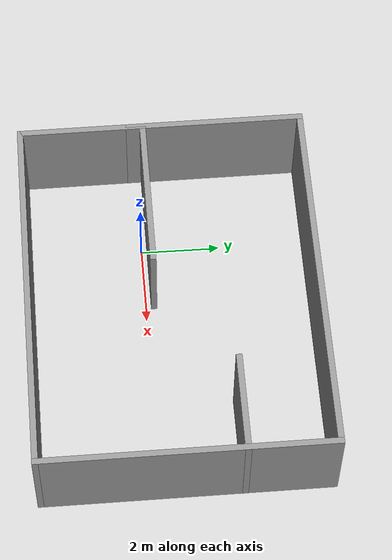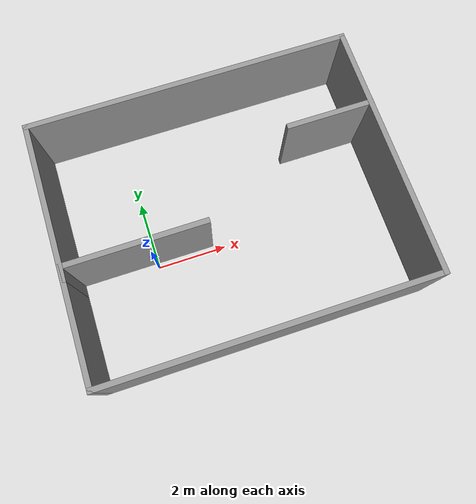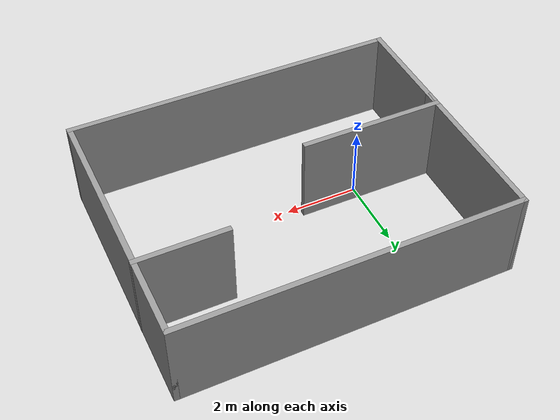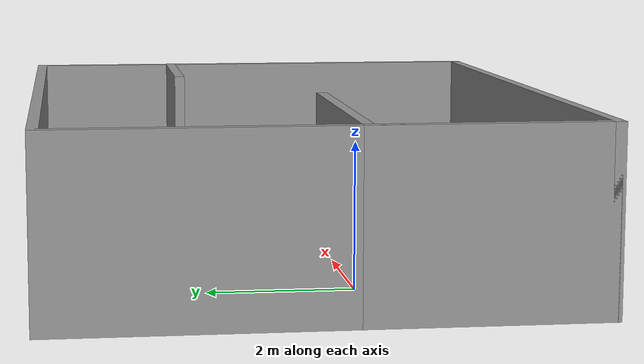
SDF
<?xml version='1.0'?>
<sdf version='1.6'>
  <model name='test'>
    <pose frame=''>2.30198 0.6595 0 0 -0 0</pose>
    <link name='Wall_0'>
      <collision name='Wall_0_Collision'>
        <geometry>
          <box>
            <size>4.5 0.15 2.5</size>
          </box>
        </geometry>
        <pose frame=''>0 0 1.25 0 -0 0</pose>
      </collision>
      <visual name='Wall_0_Visual'>
        <pose frame=''>0 0 1.25 0 -0 0</pose>
        <geometry>
          <box>
            <size>4.5 0.15 2.5</size>
          </box>
        </geometry>
        <material>
          <script>
            <uri>file://media/materials/scripts/gazebo.material</uri>
            <name>Gazebo/Grey</name>
          </script>
          <ambient>1 1 1 1</ambient>
        </material>
      </visual>
      <pose frame=''>-4.55196 1.375 0 0 -0 1.5708</pose>
    </link>
    <link name='Wall_1'>
      <collision name='Wall_1_Collision'>
        <geometry>
          <box>
            <size>9.25 0.15 2.5</size>
          </box>
        </geometry>
        <pose frame=''>0 0 1.25 0 -0 0</pose>
      </collision>
      <visual name='Wall_1_Visual'>
        <pose frame=''>0 0 1.25 0 -0 0</pose>
        <geometry>
          <box>
            <size>9.25 0.15 2.5</size>
          </box>
        </geometry>
        <material>
          <script>
            <uri>file://media/materials/scripts/gazebo.material</uri>
            <name>Gazebo/Grey</name>
          </script>
          <ambient>1 1 1 1</ambient>
        </material>
      </visual>
      <pose frame=''>-0.001955 3.55 0 0 -0 0</pose>
    </link>
    <link name='Wall_3'>
      <collision name='Wall_3_Collision'>
        <geometry>
          <box>
            <size>7.25 0.15 2.5</size>
          </box>
        </geometry>
        <pose frame=''>0 0 1.25 0 -0 0</pose>
      </collision>
      <visual name='Wall_3_Visual'>
        <pose frame=''>0 0 1.25 0 -0 0</pose>
        <geometry>
          <box>
            <size>7.25 0.15 2.5</size>
          </box>
        </geometry>
        <material>
          <script>
            <uri>file://media/materials/scripts/gazebo.material</uri>
            <name>Gazebo/Grey</name>
          </script>
          <ambient>1 1 1 1</ambient>
        </material>
      </visual>
      <pose frame=''>4.54805 0 0 0 0 -1.5708</pose>
    </link>
    <link name='Wall_4'>
      <collision name='Wall_4_Collision'>
        <geometry>
          <box>
            <size>9.25 0.15 2.5</size>
          </box>
        </geometry>
        <pose frame=''>0 0 1.25 0 -0 0</pose>
      </collision>
      <visual name='Wall_4_Visual'>
        <pose frame=''>0 0 1.25 0 -0 0</pose>
        <geometry>
          <box>
            <size>9.25 0.15 2.5</size>
          </box>
        </geometry>
        <material>
          <script>
            <uri>file://media/materials/scripts/gazebo.material</uri>
            <name>Gazebo/Grey</name>
          </script>
          <ambient>1 1 1 1</ambient>
        </material>
      </visual>
      <pose frame=''>-0.001955 -3.55 0 0 -0 3.14159</pose>
    </link>
    <link name='Wall_5'>
      <collision name='Wall_5_Collision'>
        <geometry>
          <box>
            <size>3.25 0.15 2.5</size>
          </box>
        </geometry>
        <pose frame=''>0 0 1.25 0 -0 0</pose>
      </collision>
      <visual name='Wall_5_Visual'>
        <pose frame=''>0 0 1.25 0 -0 0</pose>
        <geometry>
          <box>
            <size>3.25 0.15 2.5</size>
          </box>
        </geometry>
        <material>
          <script>
            <uri>file://media/materials/scripts/gazebo.material</uri>
            <name>Gazebo/Grey</name>
          </script>
          <ambient>1 1 1 1</ambient>
        </material>
      </visual>
      <pose frame=''>-4.55196 -2 0 0 -0 1.5708</pose>
    </link>
    <link name='Wall_6'>
      <collision name='Wall_6_Collision'>
        <geometry>
          <box>
            <size>4 0.15 2.5</size>
          </box>
        </geometry>
        <pose frame=''>0 0 1.25 0 -0 0</pose>
      </collision>
      <visual name='Wall_6_Visual'>
        <pose frame=''>0 0 1.25 0 -0 0</pose>
        <geometry>
          <box>
            <size>4 0.15 2.5</size>
          </box>
        </geometry>
        <material>
          <script>
            <uri>file://media/materials/scripts/gazebo.material</uri>
            <name>Gazebo/Grey</name>
          </script>
          <ambient>1 1 1 1</ambient>
        </material>
      </visual>
      <pose frame=''>-2.62696 -0.45 0 0 -0 0</pose>
    </link>
    <link name='Wall_8'>
      <collision name='Wall_8_Collision'>
        <geometry>
          <box>
            <size>2.5 0.15 2.5</size>
          </box>
        </geometry>
        <pose frame=''>0 0 1.25 0 -0 0</pose>
      </collision>
      <visual name='Wall_8_Visual'>
        <pose frame=''>0 0 1.25 0 -0 0</pose>
        <geometry>
          <box>
            <size>2.5 0.15 2.5</size>
          </box>
        </geometry>
        <material>
          <script>
            <uri>file://media/materials/scripts/gazebo.material</uri>
            <name>Gazebo/Grey</name>
          </script>
          <ambient>1 1 1 1</ambient>
        </material>
      </visual>
      <pose frame=''>3.37696 1.39193 0 0 -0 3.14159</pose>
    </link>
    <static>1</static>
  </model>
</sdf>
